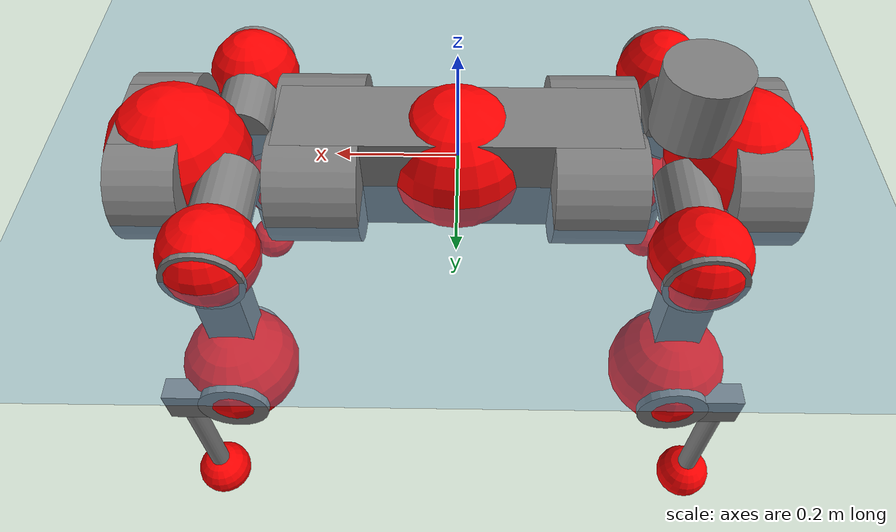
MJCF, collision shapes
<mujoco model="anymal_c">
  <compiler angle="radian" assetdir="assets" balanceinertia="true" inertiafromgeom="false"/>

  <option timestep="0.005" density="1.2" viscosity="2e-05"/>

  <size nkey="1"/>

  <visual>
    <quality shadowsize="8192"/>
    <map shadowclip="0.5"/>
  </visual>

  <default>
    <default class="/">
      <material specular="0" shininess="0.25"/>
      <geom contype="0" conaffinity="0" group="1" solref="-1000 -80"/>
      <site size="0.01 0.005 0.005" group="5"/>
      <general forcelimited="true" forcerange="-80 80" biastype="affine" gainprm="80" biasprm="0 -80 -2"/>
      <default class="anymal_c">
        <joint armature="0.01" damping="0.01" frictionloss="0.1"/>
        <default class="visual">
          <geom type="mesh" group="2"/>
          <default class="visual_zflip"/>
        </default>
        <default class="collision">
          <geom type="cylinder" group="3"/>
          <default class="foot">
            <geom size="0.03 0 0" type="sphere" condim="6" priority="1" friction="0.8 0.02 0.01" solimp="0.015 1 0.03"/>
          </default>
        </default>
      </default>
      <default class="reward_collision_sphere">
        <geom group="5" rgba="1 0 0 1"/>
      </default>
    </default>
  </default>

  <asset>
    <texture type="skybox" colorspace="auto" name="//unnamed_texture_0" builtin="gradient" rgb1="0.95 0.95 0.95" rgb2="0.95 0.95 0.95" width="100" height="600"/>
    <texture type="2d" colorspace="auto" name="texplane" builtin="checker" rgb1="0.345 0.575 0.748" rgb2="0.345 0.575 0.748" markrgb="1 1 1" width="512" height="512"/>
    <texture type="2d" colorspace="linear" name="base" file="base.png"/>
    <texture type="2d" colorspace="linear" name="top_shell" file="top_shell.png"/>
    <texture type="2d" colorspace="linear" name="bottom_shell" file="bottom_shell.png"/>
    <texture type="2d" colorspace="linear" name="remote" file="remote.png"/>
    <texture type="2d" colorspace="linear" name="hatch" file="hatch.png"/>
    <texture type="2d" colorspace="linear" name="handle" file="handle.png"/>
    <texture type="2d" colorspace="linear" name="face" file="face.png"/>
    <texture type="2d" colorspace="linear" name="battery" file="battery.png"/>
    <texture type="2d" colorspace="linear" name="lidar_cage" file="lidar_cage.png"/>
    <texture type="2d" colorspace="linear" name="depth_camera" file="depth_camera.png"/>
    <texture type="2d" colorspace="linear" name="wide_angle_camera" file="wide_angle_camera.png"/>
    <texture type="2d" colorspace="linear" name="lidar" file="lidar.png"/>
    <texture type="2d" colorspace="linear" name="drive" file="drive.png"/>
    <texture type="2d" colorspace="linear" name="hip_l" file="hip_l.png"/>
    <texture type="2d" colorspace="linear" name="shank_l" file="shank_l.png"/>
    <texture type="2d" colorspace="linear" name="foot" file="foot.png"/>
    <texture type="2d" colorspace="linear" name="thigh" file="thigh.png"/>
    <texture type="2d" colorspace="linear" name="shank_r" file="shank_r.png"/>
    <texture type="2d" colorspace="linear" name="hip_r" file="hip_r.png"/>
    <material name="MatPlane" class="/" texture="texplane" texuniform="true" texrepeat="2 2" specular="0.9" shininess="0.5"/>
    <material name="black_plastic" class="/" rgba="0.007 0.007 0.007 1"/>
    <material name="green" class="/" rgba="0.052 0.178 0.033 1"/>
    <material name="red" class="/" rgba="0.178 0.006 0.005 1"/>
    <material name="yellow" class="/" rgba="0.178 0.119 0.006 1"/>
    <material name="lwl" class="/" rgba="0.8 0.8 0.8 1"/>
    <material name="base" class="/" texture="base"/>
    <material name="top_shell" class="/" texture="top_shell"/>
    <material name="bottom_shell" class="/" texture="bottom_shell"/>
    <material name="hip_l" class="/" texture="hip_l"/>
    <material name="thigh" class="/" texture="thigh"/>
    <material name="shank_l" class="/" texture="shank_l"/>
    <material name="foot" class="/" texture="foot"/>
    <material name="hip_r" class="/" texture="hip_r"/>
    <material name="shank" class="/" texture="shank_r"/>
    <material name="hatch" class="/" texture="hatch"/>
    <material name="remote" class="/" texture="remote"/>
    <material name="handle" class="/" texture="handle"/>
    <material name="face" class="/" texture="face"/>
    <material name="depth_camera" class="/" texture="depth_camera"/>
    <material name="wide_angle_camera" class="/" texture="wide_angle_camera"/>
    <material name="battery" class="/" texture="battery"/>
    <material name="lidar_cage" class="/" texture="lidar_cage"/>
    <material name="lidar" class="/" texture="lidar"/>
    <material name="drive" class="/" texture="drive"/>
    <mesh name="base_0" class="/" file="base_0.obj"/>
    <mesh name="base_1" class="/" file="base_1.obj"/>
    <mesh name="base_2" class="/" file="base_2.obj"/>
    <mesh name="base_3" class="/" file="base_3.obj"/>
    <mesh name="base_4" class="/" file="base_4.obj"/>
    <mesh name="base_5" class="/" file="base_5.obj"/>
    <mesh name="top_shell" class="/" file="top_shell.obj"/>
    <mesh name="bottom_shell" class="/" file="bottom_shell.obj"/>
    <mesh name="remote" class="/" file="remote.obj"/>
    <mesh name="handle" class="/" file="handle.obj"/>
    <mesh name="face" class="/" file="face.obj"/>
    <mesh name="wide_angle_camera" class="/" file="wide_angle_camera.obj"/>
    <mesh name="depth_camera" class="/" file="depth_camera.obj"/>
    <mesh name="battery" class="/" file="battery.obj"/>
    <mesh name="lidar_cage" class="/" file="lidar_cage.obj"/>
    <mesh name="lidar" class="/" file="lidar.obj"/>
    <mesh name="drive" class="/" file="drive.obj"/>
    <mesh name="hip_l" class="/" file="hip_l.obj"/>
    <mesh name="thigh" class="/" file="thigh.obj"/>
    <mesh name="shank_l" class="/" file="shank_l.obj"/>
    <mesh name="foot" class="/" file="foot.obj"/>
    <mesh name="hip_r" class="/" file="hip_r.obj"/>
    <mesh name="hatch" class="/" file="hatch.obj"/>
    <mesh name="shank_r" class="/" file="shank_r.obj"/>
  </asset>

  <worldbody>
    <geom name="floor" class="/" size="100 100 0.125" type="plane" group="0" material="MatPlane"/>
    <light name="toplight_shadow" class="/" pos="0 0 5" dir="0.0990148 0.0990148 -0.990148" type="directional" ambient="0.04 0.04 0.04" diffuse="0.55 0.55 0.55" specular="0.12 0.12 0.12"/>
    <light name="toplight_fill" class="/" pos="0 0 5" dir="0.0990148 0.0990148 -0.990148" type="directional" castshadow="false" ambient="0.04 0.04 0.04" diffuse="0.3 0.3 0.3" specular="0.08 0.08 0.08"/>
    <body name="trunk" childclass="anymal_c" pos="0.000815027 0.00102917 -0.00257565" quat="1 0.000387732 -0.000125522 0.000695205">
      <inertial pos="0.0012238 0.0020725 0.0456724" quat="0.50031 0.500062 0.500068 0.499559" mass="18.375" diaginertia="0.709532 0.586584 0.173516"/>
      <joint name="//unnamed_joint_0" type="free" armature="0" damping="0" frictionloss="0"/>
      <geom name="//unnamed_geom_1" class="visual" material="green" mesh="base_0"/>
      <geom name="//unnamed_geom_2" class="visual" material="yellow" mesh="base_1"/>
      <geom name="//unnamed_geom_3" class="visual" material="red" mesh="base_2"/>
      <geom name="//unnamed_geom_4" class="visual" material="black_plastic" mesh="base_3"/>
      <geom name="//unnamed_geom_5" class="visual" material="lwl" mesh="base_4"/>
      <geom name="//unnamed_geom_6" class="visual" material="base" mesh="base_5"/>
      <geom name="trunk_1" class="collision" size="0.285675 0.068956 0.0886578" type="box"/>
      <geom name="trunk_2" class="collision" size="0.0886578 0.0714188" pos="0.221633 0.0690179 0" quat="0.707107 0 0.707107 0"/>
      <geom name="trunk_3" class="collision" size="0.0886578 0.0714188" pos="-0.221633 0.0690179 0" quat="0.707107 0 0.707107 0"/>
      <geom name="trunk_4" class="collision" size="0.0886578 0.0714188" pos="0.221633 -0.0690179 0" quat="0.707107 0 0.707107 0"/>
      <geom name="trunk_5" class="collision" size="0.0886578 0.0714188" pos="-0.221633 -0.0690179 0" quat="0.707107 0 0.707107 0"/>
      <geom name="//unnamed_geom_12" class="visual" material="top_shell" mesh="top_shell"/>
      <geom name="//unnamed_geom_13" class="visual" material="bottom_shell" mesh="bottom_shell"/>
      <geom name="//unnamed_geom_14" class="visual" material="remote" mesh="remote"/>
      <geom name="//unnamed_geom_15" class="visual" material="handle" mesh="handle"/>
      <geom name="//unnamed_geom_16" class="visual" pos="0.422376 0 0" quat="1 0 0 0" material="face" mesh="face"/>
      <geom name="trunk_6" class="collision" size="0.0541797 0.068956 0.0886578" pos="0.478421 0 0" type="box"/>
      <geom name="//unnamed_geom_18" class="collision" size="0.0886578 0.0541797" pos="0.478421 0.0690179 0" quat="0.707107 0 0.707107 0"/>
      <geom name="//unnamed_geom_19" class="collision" size="0.0886578 0.0541797" pos="0.478421 -0.0690179 0" quat="0.707107 0 0.707107 0"/>
      <geom name="//unnamed_geom_20" class="visual" pos="0.470419 0 -0.0272262" quat="0.965926 0 0.258819 0" material="depth_camera" mesh="depth_camera"/>
      <geom name="//unnamed_geom_21" class="visual" pos="0.522747 0 0.0142258" material="wide_angle_camera" mesh="wide_angle_camera"/>
      <geom name="//unnamed_geom_22" class="visual_zflip" pos="-0.422376 0 0" quat="0 0 0 1" material="face" mesh="face"/>
      <geom name="trunk_7" class="collision" size="0.0541797 0.068956 0.0886578" pos="-0.478421 0 0" quat="0 0 0 1" type="box"/>
      <geom name="//unnamed_geom_24" class="collision" size="0.0886578 0.0541797" pos="-0.478421 -0.0690179 0" quat="0 -0.707107 0 0.707107"/>
      <geom name="//unnamed_geom_25" class="collision" size="0.0886578 0.0541797" pos="-0.478421 0.0690179 0" quat="0 -0.707107 0 0.707107"/>
      <geom name="//unnamed_geom_26" class="visual" pos="-0.470419 0 -0.0272262" quat="0 -0.258819 0 0.965926" material="depth_camera" mesh="depth_camera"/>
      <geom name="//unnamed_geom_27" class="visual_zflip" pos="-0.522747 0 0.0142258" quat="0 0 0 1" material="wide_angle_camera" mesh="wide_angle_camera"/>
      <geom name="//unnamed_geom_28" class="visual" material="battery" mesh="battery"/>
      <geom name="//unnamed_geom_29" class="visual" pos="0 0.0749509 0.0281281" quat="0.683013 -0.183013 0.183013 0.683013" material="depth_camera" mesh="depth_camera"/>
      <geom name="//unnamed_geom_30" class="visual" pos="0 -0.0749509 0.0281281" quat="0.683013 0.183013 0.183013 -0.683013" material="depth_camera" mesh="depth_camera"/>
      <geom name="//unnamed_geom_31" class="visual" pos="-0.370916 0 0.0698462" quat="1 0 0 0" material="lidar_cage" mesh="lidar_cage"/>
      <geom name="trunk_8" class="collision" size="0.068956 0.0591052" pos="-0.370916 0 0.126864"/>
      <geom name="//unnamed_geom_33" class="visual" pos="-0.370916 -1.2977e-05 0.135131" quat="0.707107 0 0 -0.707107" material="lidar" mesh="lidar"/>
      <geom name="//unnamed_geom_34" class="visual" pos="0.305598 0.102528 6.15492e-10" quat="0.258819 0.965926 0 0" material="drive" mesh="drive"/>
      <geom name="//unnamed_geom_35" class="visual" pos="0.305598 -0.102528 -6.15492e-10" quat="0.258819 -0.965926 0 0" material="drive" mesh="drive"/>
      <geom name="//unnamed_geom_36" class="visual" pos="-0.305598 0.102528 -6.15492e-10" quat="0 0 0.965926 -0.258819" material="drive" mesh="drive"/>
      <geom name="//unnamed_geom_37" class="visual" pos="-0.305598 -0.102528 6.15492e-10" quat="0 0 -0.965926 -0.258819" material="drive" mesh="drive"/>
      <geom name="//unnamed_geom_38" class="visual" pos="0.118204 0 0.0693711" quat="1 0 0 0" material="hatch" mesh="hatch"/>
      <geom name="//unnamed_geom_39" class="reward_collision_sphere" size="0.11821"/>
      <geom name="//unnamed_geom_40" class="reward_collision_sphere" size="0.11821" pos="0.45855 0 0"/>
      <geom name="//unnamed_geom_41" class="reward_collision_sphere" size="0.11821" pos="-0.45855 0 0"/>
      <site name="imu" pos="0.258775 0.0221233 0.0531066" size="0.00985086"/>
      <camera name="track" pos="0 -1.97194 0" quat="0.707107 0.707107 0 0" mode="trackcom"/>
      <camera name="ego_camera" pos="0.45855 0 -0.0380116" quat="-0.5 -0.5 0.5 0.5"/>
      <body name="LF_HIP" pos="0.306219 0.102451 0.00129933" quat="0.258316 0.96606 -0.000734088 -0.000863938">
        <inertial pos="0.0583645 -0.0174725 -0.00698897" quat="-0.129666 0.706959 -0.138476 0.681337" mass="2.58378" diaginertia="0.00652442 0.00475962 0.00255726"/>
        <joint name="LF_HAA" pos="0 0 0" axis="0.999983 0.00519792 0.0027845" range="-0.697296 0.50549" armature="0.00988896" damping="0.0240228" frictionloss="0.0991184"/>
        <geom name="//unnamed_geom_42" class="visual" pos="0 3.62066e-05 -5.94691e-06" quat="0.258819 -0.965926 0 0" material="hip_l" mesh="hip_l"/>
        <geom name="//unnamed_geom_43" class="visual" pos="0.0610381 -0.0735131 -0.0421789" quat="0.183013 -0.683013 0.683013 0.183013" material="drive" mesh="drive"/>
        <geom name="//unnamed_geom_44" class="collision" size="0.0492543 0.068956" pos="0.0610381 -0.011792 -0.00656175" quat="-0.353553 -0.612372 0.612372 -0.353553"/>
        <body name="LF_THIGH" pos="0.0641626 -0.0728881 -0.0365712" quat="0.182483 -0.683745 0.68236 0.18324">
          <inertial pos="0.0343541 -0.00274985 -0.235188" quat="0.993194 -0.00513703 -0.0803292 0.0841803" mass="2.87155" diaginertia="0.033171 0.0265625 0.003155"/>
          <joint name="LF_HFE" pos="0 0 0" axis="0.999979 0.00253716 0.00599866" range="-3.10039 3.13765" armature="0.00881623" damping="0.0121166" frictionloss="0.0897057"/>
          <geom name="//unnamed_geom_45" class="visual" pos="0.000657189 1.03558e-06 0" quat="0.707107 0 0 -0.707107" material="thigh" mesh="thigh"/>
          <geom name="//unnamed_geom_46" class="collision" size="0.0640306 0.0394035" pos="0.04076 0 0" quat="0.5 0.5 -0.5 -0.5"/>
          <geom name="//unnamed_geom_47" class="collision" size="0.0369407 0.0295526 0.139206" pos="0.03057 0 -0.134289" quat="0.707107 0 0 -0.707107" type="box"/>
          <geom name="//unnamed_geom_48" class="visual" pos="0.102206 0 -0.270832" quat="1 0 0 0" material="drive" mesh="drive"/>
          <geom name="//unnamed_geom_49" class="collision" size="0.0492543 0.068956" pos="0.0308757 0 -0.270832" quat="0.707107 0 0.707107 0"/>
          <geom name="//unnamed_geom_50" class="reward_collision_sphere" size="0.0788069" pos="0.025475 0 0"/>
          <body name="LF_SHANK" pos="0.101882 -0.00199462 -0.270559" quat="0.999999 7.14114e-05 -0.000591797 0.00137187">
            <inertial pos="0.00319054 -0.0608999 -0.0738692" quat="0.992363 -0.119412 0.00799028 -0.0298667" mass="0.561441" diaginertia="0.0108516 0.00897939 0.000888624"/>
            <joint name="LF_KFE" pos="0 0 0" axis="0.999946 -0.00912589 -0.00499078" stiffness="0.00632112" range="-3.17419 3.12125" armature="0.0110747" damping="0" frictionloss="0.111944"/>
            <geom name="//unnamed_geom_51" class="visual" pos="0.000214295 0.00114263 0" quat="0.707107 0 0 -0.707107" material="shank_l" mesh="shank_l"/>
            <geom name="LF_kfe_act" class="collision" size="0.0591052 0.0197017" pos="0.02038 0 0" quat="0.5 0.5 -0.5 -0.5"/>
            <geom name="//unnamed_geom_53" class="collision" size="0.0566415 0.0332467 0.0187166" pos="0.02038 -0.0566923 0" quat="0.5 0.5 -0.5 -0.5" type="box"/>
            <geom name="//unnamed_geom_54" class="visual" pos="0.0132979 -0.0863478 -0.321169" quat="0.382683 0 0 -0.92388" material="foot" mesh="foot"/>
            <geom name="LF_calf" class="collision" size="0.017239 0.139145" pos="0.013298 -0.086716 -0.160585" quat="0.707107 0 0 -0.707107"/>
            <geom name="LF_foot" class="foot" size="0.028085" pos="0.013298 -0.086716 -0.299788" quat="0.707107 0 0 -0.707107"/>
            <geom name="//unnamed_geom_57" class="reward_collision_sphere" size="0.0985086" pos="-0.05095 0 0"/>
            <geom name="//unnamed_geom_58" class="reward_collision_sphere" size="0.0492543" pos="0.013298 -0.086716 -0.299788"/>
            <site name="LF_foot" class="foot" pos="0.013298 -0.086716 -0.299788" quat="0.707107 0 0 -0.707107" size="0.00985086"/>
          </body>
        </body>
      </body>
      <body name="RF_HIP" pos="0.305672 -0.102057 -0.00139009" quat="0.25849 -0.966013 -0.00125024 -0.00049555">
        <inertial pos="0.0606332 0.013397 -0.00822048" quat="0.135006 0.673494 0.120439 0.716711" mass="2.64315" diaginertia="0.00600577 0.00442193 0.00237324"/>
        <joint name="RF_HAA" pos="0 0 0" axis="0.99993 0.00600896 -0.0101987" range="-0.460421 0.71617" armature="0.0104434" damping="0.00470632" frictionloss="0.0875437"/>
        <geom name="//unnamed_geom_59" class="visual" pos="0 -3.62063e-05 -5.94689e-06" quat="0.258819 0.965926 0 0" material="hip_r" mesh="hip_r"/>
        <geom name="//unnamed_geom_60" class="visual" pos="0.0610381 0.0735131 -0.0421789" quat="0.183013 0.683013 0.683013 -0.183013" material="drive" mesh="drive"/>
        <geom name="//unnamed_geom_61" class="collision" size="0.0492543 0.068956" pos="0.0610381 0.011792 -0.00656175" quat="-0.353553 0.612372 0.612372 0.353553"/>
        <body name="RF_THIGH" pos="0.0617005 0.07052 -0.0395536" quat="0.183219 0.683592 0.682472 -0.182661">
          <inertial pos="0.0343355 -0.00263587 -0.232134" quat="0.994125 -0.0107748 -0.0753323 0.0769662" mass="2.93968" diaginertia="0.0325594 0.026397 0.00322669"/>
          <joint name="RF_HFE" pos="0 0 0" axis="0.999974 -0.00550492 0.00464961" range="-3.12892 3.18862" armature="0.00990311" damping="0.00983362" frictionloss="0.110531"/>
          <geom name="//unnamed_geom_62" class="visual" pos="0.000657189 1.03558e-06 0" quat="0.707107 0 0 -0.707107" material="thigh" mesh="thigh"/>
          <geom name="//unnamed_geom_63" class="collision" size="0.0640306 0.0394035" pos="0.04076 0 0" quat="0.5 0.5 0.5 0.5"/>
          <geom name="//unnamed_geom_64" class="collision" size="0.0369407 0.0295526 0.139206" pos="0.03057 0 -0.134289" quat="0.707107 0 0 0.707107" type="box"/>
          <geom name="//unnamed_geom_65" class="visual" pos="0.102206 0 -0.270832" quat="1 0 0 0" material="drive" mesh="drive"/>
          <geom name="//unnamed_geom_66" class="collision" size="0.0492543 0.068956" pos="0.0308757 0 -0.270832" quat="0.707107 0 0.707107 0"/>
          <geom name="//unnamed_geom_67" class="reward_collision_sphere" size="0.0788069" pos="0.025475 0 0"/>
          <body name="RF_SHANK" pos="0.100409 -0.00234796 -0.272703" quat="1 7.28856e-06 -5.7549e-05 2.72303e-05">
            <inertial pos="0.00522901 0.0594426 -0.0762908" quat="0.993231 0.114616 -0.00646906 0.0176797" mass="0.567391" diaginertia="0.0111991 0.00860347 0.000837114"/>
            <joint name="RF_KFE" pos="0 0 0" axis="0.999992 -0.00404682 -0.00053412" range="-3.15889 3.19238" armature="0.0090571" damping="0.0223131" frictionloss="0.0876213"/>
            <geom name="//unnamed_geom_68" class="visual" pos="0.000214294 -0.00114263 0" quat="0.707107 0 0 0.707107" material="shank" mesh="shank_r"/>
            <geom name="RF_kfe_act" class="collision" size="0.0591052 0.0197017" pos="0.02038 0 0" quat="0.5 0.5 0.5 0.5"/>
            <geom name="//unnamed_geom_70" class="collision" size="0.0566415 0.0332467 0.0187166" pos="0.02038 0.0566923 0" quat="0.5 0.5 0.5 0.5" type="box"/>
            <geom name="//unnamed_geom_71" class="visual" pos="0.013298 0.0863478 -0.321169" quat="0.382683 0 0 0.92388" material="foot" mesh="foot"/>
            <geom name="RF_calf" class="collision" size="0.017239 0.139145" pos="0.013298 0.086716 -0.160585" quat="0.707107 0 0 0.707107"/>
            <geom name="RF_foot" class="foot" size="0.0248045" pos="0.013298 0.086716 -0.299788" quat="0.707107 0 0 0.707107"/>
            <geom name="//unnamed_geom_74" class="reward_collision_sphere" size="0.0985086" pos="-0.05095 0 0"/>
            <geom name="//unnamed_geom_75" class="reward_collision_sphere" size="0.0492543" pos="0.013298 0.086716 -0.299788"/>
            <site name="RF_foot" class="foot" pos="0.013298 0.086716 -0.299788" quat="0.707107 0 0 0.707107" size="0.00985086"/>
          </body>
        </body>
      </body>
      <body name="LH_HIP" pos="-0.305634 0.102012 -0.0018691" quat="4.13274e-05 -3.72315e-05 0.965885 -0.258971">
        <inertial pos="0.0599611 0.016269 -0.0106342" quat="0.137795 0.677955 0.128946 0.710467" mass="2.71614" diaginertia="0.00637434 0.00461753 0.0026152"/>
        <joint name="LH_HAA" pos="0 0 0" axis="1 0.000120767 -0.000597899" stiffness="0.00813163" range="-0.482249 0.667498" armature="0.00876748" damping="0.00325574" frictionloss="0.108048"/>
        <geom name="//unnamed_geom_76" class="visual" pos="0 -3.62063e-05 -5.94689e-06" quat="-0.258819 -0.965926 0 0" material="hip_r" mesh="hip_r"/>
        <geom name="//unnamed_geom_77" class="visual" pos="0.0610381 0.0735131 -0.0421789" quat="0.183013 0.683013 0.683013 -0.183013" material="drive" mesh="drive"/>
        <geom name="//unnamed_geom_78" class="collision" size="0.0492543 0.068956" pos="0.0610381 0.011792 -0.00656175" quat="-0.353553 0.612372 0.612372 0.353553"/>
        <body name="LH_THIGH" pos="0.0608824 0.0694109 -0.0384923" quat="0.183039 0.682974 0.683038 -0.183039">
          <inertial pos="0.031271 4.02775e-05 -0.233515" quat="0.993165 -0.0106534 -0.0733059 0.0901988" mass="3.02054" diaginertia="0.0333292 0.0280896 0.00339924"/>
          <joint name="LH_HFE" pos="0 0 0" axis="0.999924 -0.0049266 -0.0113446" stiffness="0.00958417" range="-3.16022 3.11789" armature="0.0110708" damping="0" frictionloss="0.0994597"/>
          <geom name="//unnamed_geom_79" class="visual" pos="0.000657189 1.03558e-06 0" quat="0.707107 0 0 -0.707107" material="thigh" mesh="thigh"/>
          <geom name="//unnamed_geom_80" class="collision" size="0.0640306 0.0394035" pos="0.04076 0 0" quat="0.5 0.5 -0.5 -0.5"/>
          <geom name="//unnamed_geom_81" class="collision" size="0.0369407 0.0295526 0.139206" pos="0.03057 0 -0.134289" quat="0.707107 0 0 -0.707107" type="box"/>
          <geom name="//unnamed_geom_82" class="visual" pos="0.102206 0 -0.270832" quat="1 0 0 0" material="drive" mesh="drive"/>
          <geom name="//unnamed_geom_83" class="collision" size="0.0492543 0.068956" pos="0.0308757 0 -0.270832" quat="0.707107 0 0.707107 0"/>
          <geom name="//unnamed_geom_84" class="reward_collision_sphere" size="0.0788069" pos="0.025475 0 0"/>
          <body name="LH_SHANK" pos="0.101339 -0.000575894 -0.272282" quat="1 7.45911e-06 1.05047e-05 0.000161392">
            <inertial pos="0.00373584 0.0613724 -0.0776515" quat="0.99358 0.109414 0.0109596 0.0265836" mass="0.57518" diaginertia="0.0110039 0.00868534 0.000874694"/>
            <joint name="LH_KFE" pos="0 0 0" axis="0.99997 0.00439952 -0.00640705" range="-3.14313 3.18875" armature="0.011133" damping="0" frictionloss="0.104584"/>
            <geom name="//unnamed_geom_85" class="visual" pos="0.000214294 -0.00114263 0" quat="-0.707107 0 0 -0.707107" material="shank" mesh="shank_r"/>
            <geom name="LH_kfe_act" class="collision" size="0.0591052 0.0197017" pos="0.02038 0 0" quat="0.5 0.5 -0.5 -0.5"/>
            <geom name="//unnamed_geom_87" class="collision" size="0.0566415 0.0332467 0.0187166" pos="0.02038 0.0566923 0" quat="0.5 0.5 -0.5 -0.5" type="box"/>
            <geom name="//unnamed_geom_88" class="visual" pos="0.013298 0.0863478 -0.321169" quat="-0.382683 0 0 -0.92388" material="foot" mesh="foot"/>
            <geom name="LH_calf" class="collision" size="0.017239 0.139145" pos="0.013298 0.086716 -0.160585" quat="0.707107 0 0 -0.707107"/>
            <geom name="LH_foot" class="foot" size="0.0294813" pos="0.013298 0.086716 -0.299788" quat="0.707107 0 0 -0.707107"/>
            <geom name="//unnamed_geom_91" class="reward_collision_sphere" size="0.0985086" pos="-0.05095 0 0"/>
            <geom name="//unnamed_geom_92" class="reward_collision_sphere" size="0.0492543" pos="0.013298 0.086716 -0.299788"/>
            <site name="LH_foot" class="foot" pos="0.013298 0.086716 -0.299788" quat="0.707107 0 0 -0.707107" size="0.00985086"/>
          </body>
        </body>
      </body>
      <body name="RH_HIP" pos="-0.303981 -0.105209 -8.85421e-05" quat="0.000478517 0.000400324 -0.965986 -0.258595">
        <inertial pos="0.0589237 -0.0125071 -0.00927041" quat="-0.128245 0.700656 -0.141885 0.687389" mass="2.65984" diaginertia="0.00644774 0.00462389 0.00258857"/>
        <joint name="RH_HAA" pos="0 0 0" axis="0.999986 -0.00116925 -0.00523044" stiffness="0.0084221" range="-0.68819 0.485029" armature="0.0084769" damping="0.0139271" frictionloss="0.0982484"/>
        <geom name="//unnamed_geom_93" class="visual" pos="0 3.62066e-05 -5.94691e-06" quat="-0.258819 0.965926 0 0" material="hip_l" mesh="hip_l"/>
        <geom name="//unnamed_geom_94" class="visual" pos="0.0610381 -0.0735131 -0.0421789" quat="-0.183013 0.683013 -0.683013 -0.183013" material="drive" mesh="drive"/>
        <geom name="//unnamed_geom_95" class="collision" size="0.0492543 0.068956" pos="0.0610381 -0.011792 -0.00656175" quat="0.353553 0.612372 -0.612372 0.353553"/>
        <body name="RH_THIGH" pos="0.0601329 -0.0729906 -0.0412194" quat="-0.183072 0.682985 -0.683011 -0.183063">
          <inertial pos="0.0325405 0.000482194 -0.233479" quat="0.993037 -0.00446333 -0.0821428 0.0843248" mass="2.8602" diaginertia="0.0334333 0.0288883 0.00326416"/>
          <joint name="RH_HFE" pos="0 0 0" axis="0.999998 -0.00137061 -0.00141199" stiffness="0.0075926" range="-3.14583 3.18648" armature="0.0103527" damping="0.00631051" frictionloss="0.0985142"/>
          <geom name="//unnamed_geom_96" class="visual" pos="0.000657189 1.03558e-06 0" quat="0.707107 0 0 -0.707107" material="thigh" mesh="thigh"/>
          <geom name="//unnamed_geom_97" class="collision" size="0.0640306 0.0394035" pos="0.04076 0 0" quat="0.5 0.5 0.5 0.5"/>
          <geom name="//unnamed_geom_98" class="collision" size="0.0369407 0.0295526 0.139206" pos="0.03057 0 -0.134289" quat="0.707107 0 0 0.707107" type="box"/>
          <geom name="//unnamed_geom_99" class="visual" pos="0.102206 0 -0.270832" quat="1 0 0 0" material="drive" mesh="drive"/>
          <geom name="//unnamed_geom_100" class="collision" size="0.0492543 0.068956" pos="0.0308757 0 -0.270832" quat="0.707107 0 0.707107 0"/>
          <geom name="//unnamed_geom_101" class="reward_collision_sphere" size="0.0788069" pos="0.025475 0 0"/>
          <body name="RH_SHANK" pos="0.102629 -0.00126595 -0.266967" quat="1 -6.55926e-06 0.000134905 2.07708e-05">
            <inertial pos="0.00296388 -0.0610005 -0.0763478" quat="0.994053 -0.107024 0.0071838 -0.0187899" mass="0.568667" diaginertia="0.0114294 0.00856035 0.000891496"/>
            <joint name="RH_KFE" pos="0 0 0" axis="0.999945 -0.0104611 0.000111712" range="-3.14614 3.12788" armature="0.00928389" damping="0.0189286" frictionloss="0.0935956"/>
            <geom name="//unnamed_geom_102" class="visual" pos="0.000214295 0.00114263 0" quat="0.707107 0 0 -0.707107" material="shank_l" mesh="shank_l"/>
            <geom name="RH_kfe_act" class="collision" size="0.0591052 0.0197017" pos="0.02038 0 0" quat="0.5 0.5 0.5 0.5"/>
            <geom name="//unnamed_geom_104" class="collision" size="0.0566415 0.0332467 0.0187166" pos="0.02038 -0.0566923 0" quat="0.5 0.5 0.5 0.5" type="box"/>
            <geom name="//unnamed_geom_105" class="visual" pos="0.0132979 -0.0863478 -0.321169" quat="0.382683 0 0 -0.92388" material="foot" mesh="foot"/>
            <geom name="RH_calf" class="collision" size="0.017239 0.139145" pos="0.013298 -0.086716 -0.160585" quat="0.707107 0 0 0.707107"/>
            <geom name="RH_foot" class="foot" size="0.0279629" pos="0.013298 -0.086716 -0.299788" quat="0.707107 0 0 0.707107"/>
            <geom name="//unnamed_geom_108" class="reward_collision_sphere" size="0.0985086" pos="-0.05095 0 0"/>
            <geom name="//unnamed_geom_109" class="reward_collision_sphere" size="0.0492543" pos="0.013298 -0.086716 -0.299788"/>
            <site name="RH_foot" class="foot" pos="0.013298 -0.086716 -0.299788" quat="0.707107 0 0 0.707107" size="0.00985086"/>
          </body>
        </body>
      </body>
    </body>
  </worldbody>

  <contact>
    <pair class="/" geom1="floor" geom2="LF_foot" name="//unnamed_contact_0"/>
    <pair class="/" geom1="floor" geom2="RF_foot" name="//unnamed_contact_1"/>
    <pair class="/" geom1="floor" geom2="LH_foot" name="//unnamed_contact_2"/>
    <pair class="/" geom1="floor" geom2="RH_foot" name="//unnamed_contact_3"/>
  </contact>

  <actuator>
    <general name="LF_HAA" class="/" joint="LF_HAA" forcerange="-78.8937 78.8937" gainprm="83.851" biasprm="0 -83.851 -1.96839"/>
    <general name="LF_HFE" class="/" joint="LF_HFE" forcerange="-70.6644 70.6644" gainprm="83.851" biasprm="0 -83.851 -1.96839"/>
    <general name="LF_KFE" class="/" joint="LF_KFE" forcerange="-81.648 81.648" gainprm="83.851" biasprm="0 -83.851 -1.96839"/>
    <general name="RF_HAA" class="/" joint="RF_HAA" forcerange="-79.7777 79.7777" gainprm="83.851" biasprm="0 -83.851 -1.96839"/>
    <general name="RF_HFE" class="/" joint="RF_HFE" forcerange="-89.2646 89.2646" gainprm="83.851" biasprm="0 -83.851 -1.96839"/>
    <general name="RF_KFE" class="/" joint="RF_KFE" forcerange="-78.1399 78.1399" gainprm="83.851" biasprm="0 -83.851 -1.96839"/>
    <general name="LH_HAA" class="/" joint="LH_HAA" forcerange="-82.9695 82.9695" gainprm="83.851" biasprm="0 -83.851 -1.96839"/>
    <general name="LH_HFE" class="/" joint="LH_HFE" forcerange="-72.0078 72.0078" gainprm="83.851" biasprm="0 -83.851 -1.96839"/>
    <general name="LH_KFE" class="/" joint="LH_KFE" forcerange="-74.8282 74.8282" gainprm="83.851" biasprm="0 -83.851 -1.96839"/>
    <general name="RH_HAA" class="/" joint="RH_HAA" forcerange="-71.2365 71.2365" gainprm="83.851" biasprm="0 -83.851 -1.96839"/>
    <general name="RH_HFE" class="/" joint="RH_HFE" forcerange="-83.7749 83.7749" gainprm="83.851" biasprm="0 -83.851 -1.96839"/>
    <general name="RH_KFE" class="/" joint="RH_KFE" forcerange="-77.2051 77.2051" gainprm="83.851" biasprm="0 -83.851 -1.96839"/>
  </actuator>

  <sensor>
    <gyro site="imu" name="imu_angular_velocity"/>
    <velocimeter site="imu" name="imu_linear_velocity"/>
    <framelinvel objtype="site" objname="LF_foot" name="LF_foot_global_linear_velocity"/>
    <framelinvel objtype="site" objname="RF_foot" name="RF_foot_global_linear_velocity"/>
    <framelinvel objtype="site" objname="LH_foot" name="LH_foot_global_linear_velocity"/>
    <framelinvel objtype="site" objname="RH_foot" name="RH_foot_global_linear_velocity"/>
  </sensor>

  <keyframe>
    <key name="home" qpos="0 0 0.55 1 0 0 0 0 0.4 -0.8 0 -0.4 0.8 0 -0.4 0.8 0 0.4 -0.8"/>
  </keyframe>
</mujoco>
